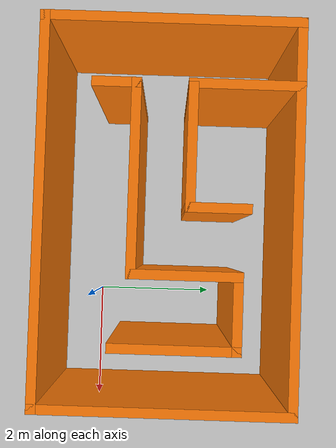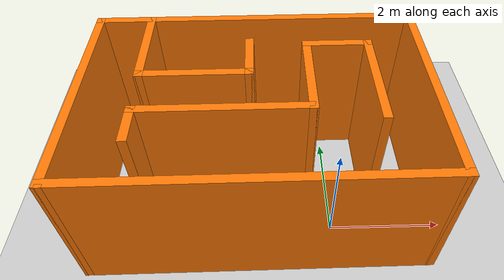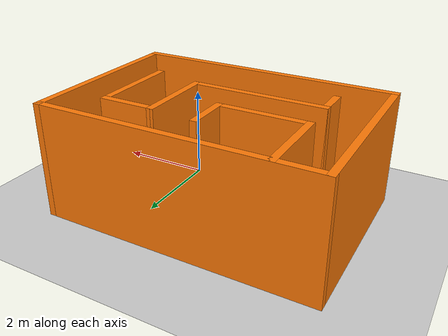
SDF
<sdf version="1.7">
 <world name="default">
  <scene><ambient>0.4 0.4 0.4 1</ambient><background>0.7 0.7 0.7 1</background><shadows>1</shadows></scene>
  <light name="sun" type="directional">
   <pose>0 0 10 0 -0 0</pose>
   <diffuse>0.8 0.8 0.8 1</diffuse>
   <specular>0.2 0.2 0.2 1</specular>
   <attenuation>
    <range>1000</range>
    <constant>0.9</constant>
    <linear>0.01</linear>
    <quadratic>0.001</quadratic>
   </attenuation>
   <direction>-0.5 0.1 -0.9</direction>
   <spot><inner_angle>0</inner_angle><outer_angle>0</outer_angle><falloff>0</falloff></spot>
  </light>
  <model name="ground_plane">
   <static>1</static>
   <link name="link">
    <collision name="collision">
     <geometry><plane><normal>0 0 1</normal><size>100 100</size></plane></geometry>
     <surface>
      <contact><collide_bitmask>65535</collide_bitmask></contact>
      <friction><ode><mu>100</mu><mu2>50</mu2></ode></friction>
     </surface>
    </collision>
    <visual name="visual">
     <cast_shadows>0</cast_shadows>
     <geometry><plane><normal>0 0 1</normal><size>100 100</size></plane></geometry>
     <material>
      <script><uri>file://media/materials/scripts/gazebo.material</uri><name>Gazebo/Grey</name></script>
     </material>
    </visual>
   </link>
  </model>
  <physics type="ode">
   <real_time_update_rate>1000</real_time_update_rate>
   <max_step_size>0.001</max_step_size>
   <real_time_factor>1</real_time_factor>
   <ode>
    <solver>
     <type>quick</type>
     <iters>150</iters>
     <precon_iters>0</precon_iters>
     <sor>1.4</sor>
     <use_dynamic_moi_rescaling>1</use_dynamic_moi_rescaling>
    </solver>
    <constraints>
     <cfm>1e-05</cfm>
     <erp>0.2</erp>
     <contact_max_correcting_vel>2000</contact_max_correcting_vel>
     <contact_surface_layer>0.01</contact_surface_layer>
    </constraints>
   </ode>
  </physics>
  <gravity>0 0 -9.8</gravity>
  <magnetic_field>6e-06 2.3e-05 -4.2e-05</magnetic_field>
  <atmosphere type="adiabatic"/>
  <spherical_coordinates>
   <surface_model>EARTH_WGS84</surface_model>
   <latitude_deg>0</latitude_deg>
   <longitude_deg>0</longitude_deg>
   <elevation>0</elevation>
   <heading_deg>0</heading_deg>
  </spherical_coordinates>
  <model name="labirent_deneme">
   <pose>-1.2752 1.20567 0 0 -0 0</pose>
   <link name="Wall_1">
    <collision name="Wall_1_Collision">
     <geometry><box><size>4 0.15 2.5</size></box></geometry>
     <pose>0 0 1.25 0 -0 0</pose>
    </collision>
    <visual name="Wall_1_Visual">
     <pose>0 0 1.25 0 -0 0</pose>
     <geometry><box><size>4 0.15 2.5</size></box></geometry>
     <material>
      <script><uri>file://media/materials/scripts/gazebo.material</uri><name>Gazebo/Grey</name></script>
      <ambient>0.996078 0.47451 0.0196078 1</ambient>
     </material>
     <meta><layer>0</layer></meta>
    </visual>
    <pose>-2.925 0 0 0 -0 -1.5708</pose>
   </link>
   <link name="Wall_13">
    <collision name="Wall_13_Collision">
     <geometry><box><size>3 0.15 2.5</size></box></geometry>
     <pose>0 0 1.25 0 -0 0</pose>
    </collision>
    <visual name="Wall_13_Visual">
     <pose>0 0 1.25 0 -0 0</pose>
     <geometry><box><size>3 0.15 2.5</size></box></geometry>
     <material>
      <script><uri>file://media/materials/scripts/gazebo.material</uri><name>Gazebo/Grey</name></script>
      <ambient>0.996078 0.47451 0.0196078 1</ambient>
     </material>
     <meta><layer>0</layer></meta>
    </visual>
    <pose>-0.527 -0.527 0 0 -0 0</pose>
   </link>
   <link name="Wall_14">
    <collision name="Wall_14_Collision">
     <geometry><box><size>1.75 0.15 2.5</size></box></geometry>
     <pose>0 0 1.25 0 -0 0</pose>
    </collision>
    <visual name="Wall_14_Visual">
     <pose>0 0 1.25 0 -0 0</pose>
     <geometry><box><size>1.75 0.15 2.5</size></box></geometry>
     <material>
      <script><uri>file://media/materials/scripts/gazebo.material</uri><name>Gazebo/Grey</name></script>
      <ambient>0.996078 0.47451 0.0196078 1</ambient>
     </material>
     <meta><layer>0</layer></meta>
    </visual>
    <pose>0.898 0.273 0 0 -0 1.5708</pose>
   </link>
   <link name="Wall_15">
    <collision name="Wall_15_Collision">
     <geometry><box><size>1.25 0.15 2.5</size></box></geometry>
     <pose>0 0 1.25 0 -0 0</pose>
    </collision>
    <visual name="Wall_15_Visual">
     <pose>0 0 1.25 0 -0 0</pose>
     <geometry><box><size>1.25 0.15 2.5</size></box></geometry>
     <material>
      <script><uri>file://media/materials/scripts/gazebo.material</uri><name>Gazebo/Grey</name></script>
      <ambient>0.996078 0.47451 0.0196078 1</ambient>
     </material>
     <meta><layer>0</layer></meta>
    </visual>
    <pose>1.448 1.073 0 0 -0 0</pose>
   </link>
   <link name="Wall_16">
    <collision name="Wall_16_Collision">
     <geometry><box><size>2 0.15 2.5</size></box></geometry>
     <pose>0 0 1.25 0 -0 0</pose>
    </collision>
    <visual name="Wall_16_Visual">
     <pose>0 0 1.25 0 -0 0</pose>
     <geometry><box><size>2 0.15 2.5</size></box></geometry>
     <material>
      <script><uri>file://media/materials/scripts/gazebo.material</uri><name>Gazebo/Grey</name></script>
      <ambient>0.996078 0.47451 0.0196078 1</ambient>
     </material>
     <meta><layer>0</layer></meta>
    </visual>
    <pose>1.998 0.148 0 0 -0 -1.5708</pose>
   </link>
   <link name="Wall_18">
    <collision name="Wall_18_Collision">
     <geometry><box><size>0.75 0.15 2.5</size></box></geometry>
     <pose>0 0 1.25 0 -0 0</pose>
    </collision>
    <visual name="Wall_18_Visual">
     <pose>0 0 1.25 0 -0 0</pose>
     <geometry><box><size>0.75 0.15 2.5</size></box></geometry>
     <material>
      <script><uri>file://media/materials/scripts/gazebo.material</uri><name>Gazebo/Grey</name></script>
      <ambient>0.996078 0.47451 0.0196078 1</ambient>
     </material>
     <meta><layer>0</layer></meta>
    </visual>
    <pose>-1.952 -0.827 0 0 -0 -1.5708</pose>
   </link>
   <link name="Wall_2">
    <collision name="Wall_2_Collision">
     <geometry><box><size>6 0.15 2.5</size></box></geometry>
     <pose>0 0 1.25 0 -0 0</pose>
    </collision>
    <visual name="Wall_2_Visual">
     <pose>0 0 1.25 0 -0 0</pose>
     <geometry><box><size>6 0.15 2.5</size></box></geometry>
     <material>
      <script><uri>file://media/materials/scripts/gazebo.material</uri><name>Gazebo/Grey</name></script>
      <ambient>0.996078 0.47451 0.0196078 1</ambient>
     </material>
     <meta><layer>0</layer></meta>
    </visual>
    <pose>0 -1.925 0 0 -0 0</pose>
   </link>
   <link name="Wall_3">
    <collision name="Wall_3_Collision">
     <geometry><box><size>4 0.15 2.5</size></box></geometry>
     <pose>0 0 1.25 0 -0 0</pose>
    </collision>
    <visual name="Wall_3_Visual">
     <pose>0 0 1.25 0 -0 0</pose>
     <geometry><box><size>4 0.15 2.5</size></box></geometry>
     <material>
      <script><uri>file://media/materials/scripts/gazebo.material</uri><name>Gazebo/Grey</name></script>
      <ambient>0.996078 0.47451 0.0196078 1</ambient>
     </material>
     <meta><layer>0</layer></meta>
    </visual>
    <pose>2.925 0 0 0 -0 1.5708</pose>
   </link>
   <link name="Wall_4">
    <collision name="Wall_4_Collision">
     <geometry><box><size>6 0.15 2.5</size></box></geometry>
     <pose>0 0 1.25 0 -0 0</pose>
    </collision>
    <visual name="Wall_4_Visual">
     <pose>0 0 1.25 0 -0 0</pose>
     <geometry><box><size>6 0.15 2.5</size></box></geometry>
     <material>
      <script><uri>file://media/materials/scripts/gazebo.material</uri><name>Gazebo/Grey</name></script>
      <ambient>0.996078 0.47451 0.0196078 1</ambient>
     </material>
     <meta><layer>0</layer></meta>
    </visual>
    <pose>0 1.925 0 0 -0 3.14159</pose>
   </link>
   <link name="Wall_6">
    <collision name="Wall_6_Collision">
     <geometry><box><size>1.75 0.15 2.5</size></box></geometry>
     <pose>0 0 1.25 0 -0 0</pose>
    </collision>
    <visual name="Wall_6_Visual">
     <pose>0 0 1.25 0 -0 0</pose>
     <geometry><box><size>1.75 0.15 2.5</size></box></geometry>
     <material>
      <script><uri>file://media/materials/scripts/gazebo.material</uri><name>Gazebo/Grey</name></script>
      <ambient>0.996078 0.47451 0.0196078 1</ambient>
     </material>
     <meta><layer>0</layer></meta>
    </visual>
    <pose>-1.967 1.125 0 0 -0 -1.5708</pose>
   </link>
   <link name="Wall_7">
    <collision name="Wall_7_Collision">
     <geometry><box><size>2 0.15 2.5</size></box></geometry>
     <pose>0 0 1.25 0 -0 0</pose>
    </collision>
    <visual name="Wall_7_Visual">
     <pose>0 0 1.25 0 -0 0</pose>
     <geometry><box><size>2 0.15 2.5</size></box></geometry>
     <material>
      <script><uri>file://media/materials/scripts/gazebo.material</uri><name>Gazebo/Grey</name></script>
      <ambient>0.996078 0.47451 0.0196078 1</ambient>
     </material>
     <meta><layer>0</layer></meta>
    </visual>
    <pose>-1.042 0.325 0 0 -0 0</pose>
   </link>
   <link name="Wall_8">
    <collision name="Wall_8_Collision">
     <geometry><box><size>1 0.15 2.5</size></box></geometry>
     <pose>0 0 1.25 0 -0 0</pose>
    </collision>
    <visual name="Wall_8_Visual">
     <pose>0 0 1.25 0 -0 0</pose>
     <geometry><box><size>1 0.15 2.5</size></box></geometry>
     <material>
      <script><uri>file://media/materials/scripts/gazebo.material</uri><name>Gazebo/Grey</name></script>
      <ambient>0.996078 0.47451 0.0196078 1</ambient>
     </material>
     <meta><layer>0</layer></meta>
    </visual>
    <pose>-0.117 0.75 0 0 -0 1.5708</pose>
   </link>
   <static>1</static>
  </model>
 </world>
</sdf>
